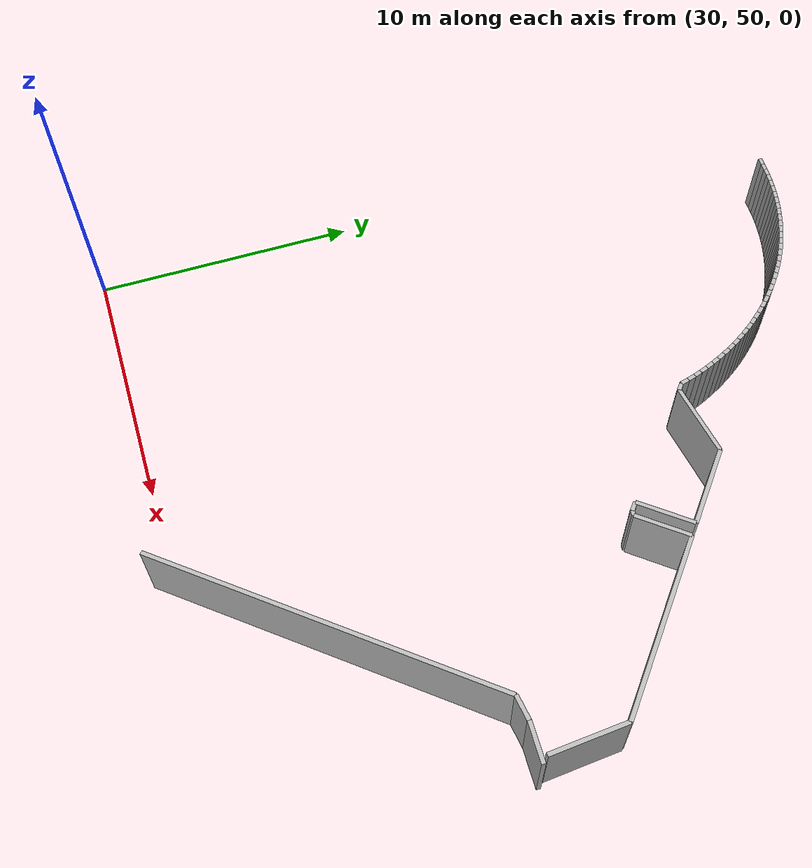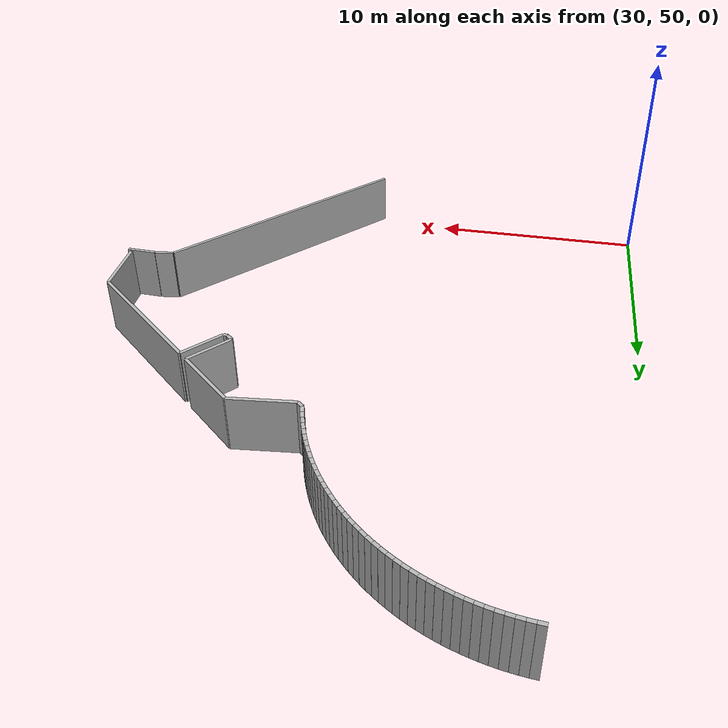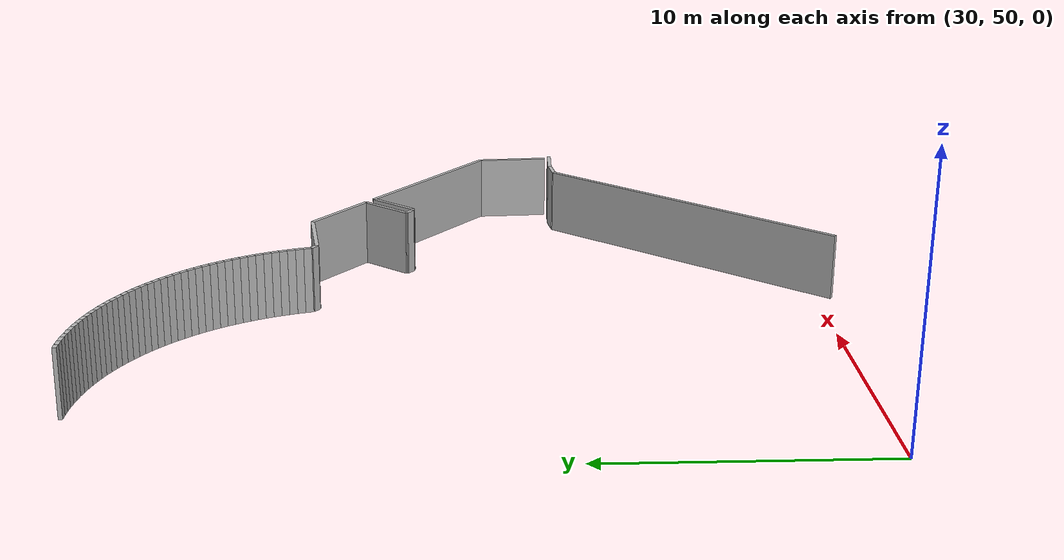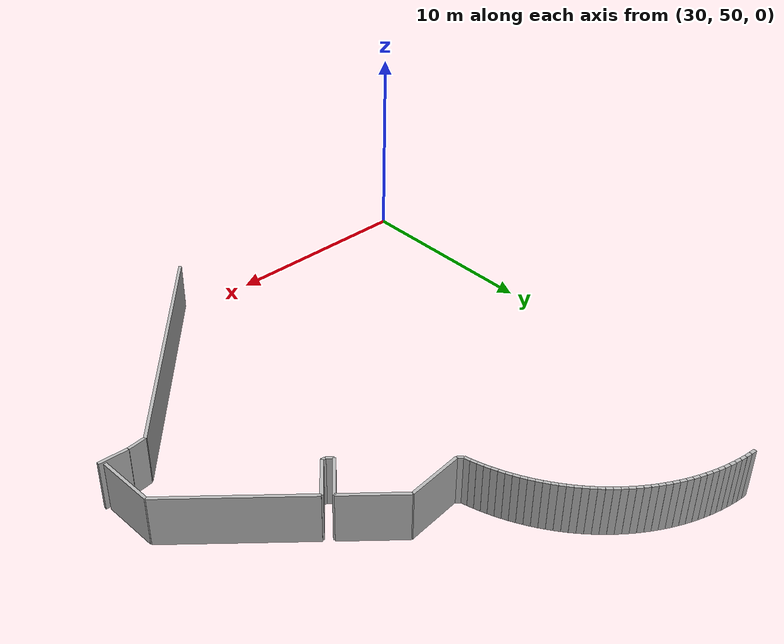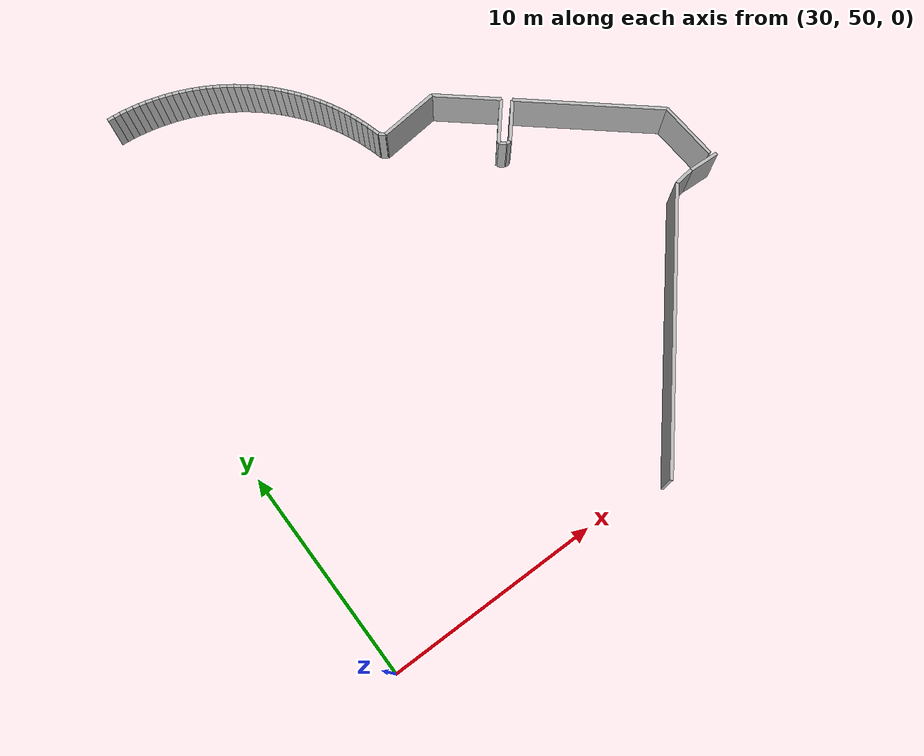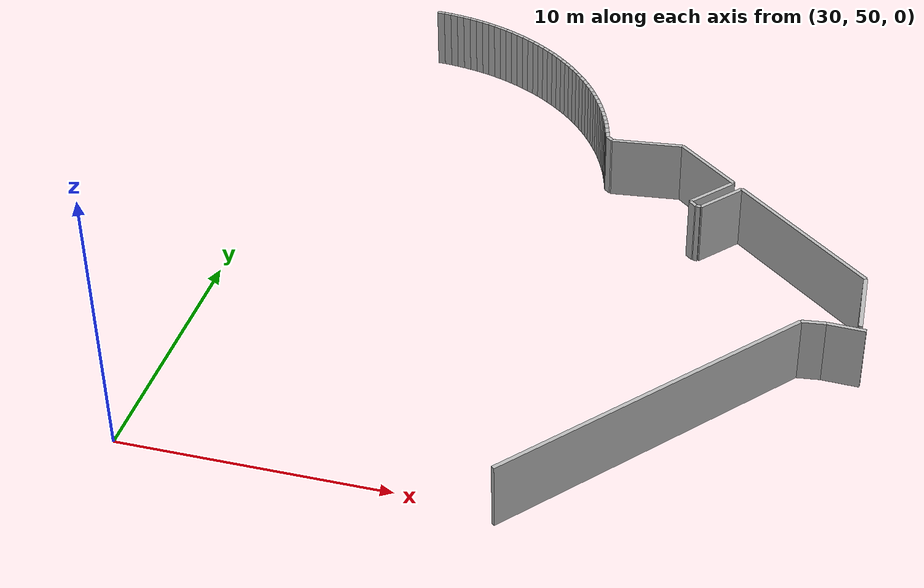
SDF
<sdf version="1.6">
 <model name="sps_2005">
  <static>1</static>
  <allow_auto_disable>0</allow_auto_disable>
  <link name="Wall1125">
   <collision name="collision"><geometry><box><size>2.75885 0.15 2.5</size></box></geometry></collision>
   <visual name="visual">
    <geometry><box><size>2.75885 0.15 2.5</size></box></geometry>
    <transparency>0.0</transparency>
   </visual>
   <pose>53.9205 60.9409 1.25 0 0 -1.51393</pose>
  </link>
  <link name="Wall1127">
   <collision name="collision"><geometry><box><size>1.3896 0.15 2.5</size></box></geometry></collision>
   <visual name="visual">
    <geometry><box><size>1.3896 0.15 2.5</size></box></geometry>
    <transparency>0.0</transparency>
   </visual>
   <pose>53.5327 59.4013 1.25 0 -0 3.09638</pose>
  </link>
  <link name="Wall1128">
   <collision name="collision"><geometry><box><size>0.884401 0.15 2.5</size></box></geometry></collision>
   <visual name="visual">
    <geometry><box><size>0.884401 0.15 2.5</size></box></geometry>
    <transparency>0.0</transparency>
   </visual>
   <pose>52.3997 59.3788 1.25 0 0 -3.01941</pose>
  </link>
  <link name="Wall1129">
   <collision name="collision"><geometry><box><size>13.0009 0.15 2.5</size></box></geometry></collision>
   <visual name="visual">
    <geometry><box><size>13.0009 0.15 2.5</size></box></geometry>
    <transparency>0.0</transparency>
   </visual>
   <pose>47.7584 54.3655 1.25 0 0 -2.27375</pose>
  </link>
  <link name="Wall1242">
   <collision name="collision"><geometry><box><size>0.304753 0.15 2.5</size></box></geometry></collision>
   <visual name="visual">
    <geometry><box><size>0.304753 0.15 2.5</size></box></geometry>
    <transparency>0.0</transparency>
   </visual>
   <pose>33.9059 76.5675 1.25 0 0 -0.0695524</pose>
  </link>
  <link name="Wall1243">
   <collision name="collision"><geometry><box><size>0.304663 0.15 2.5</size></box></geometry></collision>
   <visual name="visual">
    <geometry><box><size>0.304663 0.15 2.5</size></box></geometry>
    <transparency>0.0</transparency>
   </visual>
   <pose>34.2095 76.5418 1.25 0 0 -0.0993298</pose>
  </link>
  <link name="Wall1244">
   <collision name="collision"><geometry><box><size>0.30477 0.15 2.5</size></box></geometry></collision>
   <visual name="visual">
    <geometry><box><size>0.30477 0.15 2.5</size></box></geometry>
    <transparency>0.0</transparency>
   </visual>
   <pose>34.5121 76.5069 1.25 0 0 -0.130341</pose>
  </link>
  <link name="Wall1245">
   <collision name="collision"><geometry><box><size>0.304769 0.15 2.5</size></box></geometry></collision>
   <visual name="visual">
    <geometry><box><size>0.304769 0.15 2.5</size></box></geometry>
    <transparency>0.0</transparency>
   </visual>
   <pose>34.8137 76.4627 1.25 0 0 -0.160704</pose>
  </link>
  <link name="Wall1246">
   <collision name="collision"><geometry><box><size>0.304906 0.15 2.5</size></box></geometry></collision>
   <visual name="visual">
    <geometry><box><size>0.304906 0.15 2.5</size></box></geometry>
    <transparency>0.0</transparency>
   </visual>
   <pose>35.1138 76.4094 1.25 0 0 -0.190722</pose>
  </link>
  <link name="Wall1247">
   <collision name="collision"><geometry><box><size>0.304643 0.15 2.5</size></box></geometry></collision>
   <visual name="visual">
    <geometry><box><size>0.304643 0.15 2.5</size></box></geometry>
    <transparency>0.0</transparency>
   </visual>
   <pose>35.412 76.347 1.25 0 0 -0.221798</pose>
  </link>
  <link name="Wall1248">
   <collision name="collision"><geometry><box><size>0.30485 0.15 2.5</size></box></geometry></collision>
   <visual name="visual">
    <geometry><box><size>0.30485 0.15 2.5</size></box></geometry>
    <transparency>0.0</transparency>
   </visual>
   <pose>35.7082 76.2755 1.25 0 0 -0.251923</pose>
  </link>
  <link name="Wall1249">
   <collision name="collision"><geometry><box><size>0.304881 0.15 2.5</size></box></geometry></collision>
   <visual name="visual">
    <geometry><box><size>0.304881 0.15 2.5</size></box></geometry>
    <transparency>0.0</transparency>
   </visual>
   <pose>36.0023 76.195 1.25 0 0 -0.282617</pose>
  </link>
  <link name="Wall1250">
   <collision name="collision"><geometry><box><size>0.304833 0.15 2.5</size></box></geometry></collision>
   <visual name="visual">
    <geometry><box><size>0.304833 0.15 2.5</size></box></geometry>
    <transparency>0.0</transparency>
   </visual>
   <pose>36.2937 76.1056 1.25 0 0 -0.312823</pose>
  </link>
  <link name="Wall1251">
   <collision name="collision"><geometry><box><size>0.304838 0.15 2.5</size></box></geometry></collision>
   <visual name="visual">
    <geometry><box><size>0.304838 0.15 2.5</size></box></geometry>
    <transparency>0.0</transparency>
   </visual>
   <pose>36.5822 76.0073 1.25 0 0 -0.343913</pose>
  </link>
  <link name="Wall1252">
   <collision name="collision"><geometry><box><size>0.304662 0.15 2.5</size></box></geometry></collision>
   <visual name="visual">
    <geometry><box><size>0.304662 0.15 2.5</size></box></geometry>
    <transparency>0.0</transparency>
   </visual>
   <pose>36.8675 75.9002 1.25 0 0 -0.374294</pose>
  </link>
  <link name="Wall1253">
   <collision name="collision"><geometry><box><size>0.304824 0.15 2.5</size></box></geometry></collision>
   <visual name="visual">
    <geometry><box><size>0.304824 0.15 2.5</size></box></geometry>
    <transparency>0.0</transparency>
   </visual>
   <pose>37.1493 75.7845 1.25 0 0 -0.404603</pose>
  </link>
  <link name="Wall1254">
   <collision name="collision"><geometry><box><size>0.304801 0.15 2.5</size></box></geometry></collision>
   <visual name="visual">
    <geometry><box><size>0.304801 0.15 2.5</size></box></geometry>
    <transparency>0.0</transparency>
   </visual>
   <pose>37.4277 75.6603 1.25 0 0 -0.434897</pose>
  </link>
  <link name="Wall1255">
   <collision name="collision"><geometry><box><size>0.304812 0.15 2.5</size></box></geometry></collision>
   <visual name="visual">
    <geometry><box><size>0.304812 0.15 2.5</size></box></geometry>
    <transparency>0.0</transparency>
   </visual>
   <pose>37.7021 75.5277 1.25 0 0 -0.465349</pose>
  </link>
  <link name="Wall1256">
   <collision name="collision"><geometry><box><size>0.304886 0.15 2.5</size></box></geometry></collision>
   <visual name="visual">
    <geometry><box><size>0.304886 0.15 2.5</size></box></geometry>
    <transparency>0.0</transparency>
   </visual>
   <pose>37.9724 75.3868 1.25 0 0 -0.495704</pose>
  </link>
  <link name="Wall1257">
   <collision name="collision"><geometry><box><size>0.304683 0.15 2.5</size></box></geometry></collision>
   <visual name="visual">
    <geometry><box><size>0.304683 0.15 2.5</size></box></geometry>
    <transparency>0.0</transparency>
   </visual>
   <pose>38.2382 75.2377 1.25 0 0 -0.526849</pose>
  </link>
  <link name="Wall1258">
   <collision name="collision"><geometry><box><size>0.304841 0.15 2.5</size></box></geometry></collision>
   <visual name="visual">
    <geometry><box><size>0.304841 0.15 2.5</size></box></geometry>
    <transparency>0.0</transparency>
   </visual>
   <pose>38.4993 75.0806 1.25 0 0 -0.556456</pose>
  </link>
  <link name="Wall1259">
   <collision name="collision"><geometry><box><size>0.304909 0.15 2.5</size></box></geometry></collision>
   <visual name="visual">
    <geometry><box><size>0.304909 0.15 2.5</size></box></geometry>
    <transparency>0.0</transparency>
   </visual>
   <pose>38.7556 74.9156 1.25 0 0 -0.587503</pose>
  </link>
  <link name="Wall1260">
   <collision name="collision"><geometry><box><size>0.304775 0.15 2.5</size></box></geometry></collision>
   <visual name="visual">
    <geometry><box><size>0.304775 0.15 2.5</size></box></geometry>
    <transparency>0.0</transparency>
   </visual>
   <pose>39.0067 74.7428 1.25 0 0 -0.617945</pose>
  </link>
  <link name="Wall1261">
   <collision name="collision"><geometry><box><size>0.304801 0.15 2.5</size></box></geometry></collision>
   <visual name="visual">
    <geometry><box><size>0.304801 0.15 2.5</size></box></geometry>
    <transparency>0.0</transparency>
   </visual>
   <pose>39.2524 74.5625 1.25 0 0 -0.648187</pose>
  </link>
  <link name="Wall1262">
   <collision name="collision"><geometry><box><size>0.304782 0.15 2.5</size></box></geometry></collision>
   <visual name="visual">
    <geometry><box><size>0.304782 0.15 2.5</size></box></geometry>
    <transparency>0.0</transparency>
   </visual>
   <pose>39.4925 74.3748 1.25 0 0 -0.678994</pose>
  </link>
  <link name="Wall1263">
   <collision name="collision"><geometry><box><size>0.304635 0.15 2.5</size></box></geometry></collision>
   <visual name="visual">
    <geometry><box><size>0.304635 0.15 2.5</size></box></geometry>
    <transparency>0.0</transparency>
   </visual>
   <pose>39.7266 74.1799 1.25 0 0 -0.709104</pose>
  </link>
  <link name="Wall1264">
   <collision name="collision"><geometry><box><size>0.30467 0.15 2.5</size></box></geometry></collision>
   <visual name="visual">
    <geometry><box><size>0.30467 0.15 2.5</size></box></geometry>
    <transparency>0.0</transparency>
   </visual>
   <pose>39.9548 73.978 1.25 0 0 -0.739769</pose>
  </link>
  <link name="Wall1265">
   <collision name="collision"><geometry><box><size>0.304776 0.15 2.5</size></box></geometry></collision>
   <visual name="visual">
    <geometry><box><size>0.304776 0.15 2.5</size></box></geometry>
    <transparency>0.0</transparency>
   </visual>
   <pose>40.1767 73.7692 1.25 0 0 -0.770246</pose>
  </link>
  <link name="Wall1266">
   <collision name="collision"><geometry><box><size>0.30482 0.15 2.5</size></box></geometry></collision>
   <visual name="visual">
    <geometry><box><size>0.30482 0.15 2.5</size></box></geometry>
    <transparency>0.0</transparency>
   </visual>
   <pose>40.3921 73.5537 1.25 0 0 -0.80069</pose>
  </link>
  <link name="Wall1267">
   <collision name="collision"><geometry><box><size>0.304805 0.15 2.5</size></box></geometry></collision>
   <visual name="visual">
    <geometry><box><size>0.304805 0.15 2.5</size></box></geometry>
    <transparency>0.0</transparency>
   </visual>
   <pose>40.6009 73.3317 1.25 0 0 -0.831432</pose>
  </link>
  <link name="Wall1268">
   <collision name="collision"><geometry><box><size>0.304814 0.15 2.5</size></box></geometry></collision>
   <visual name="visual">
    <geometry><box><size>0.304814 0.15 2.5</size></box></geometry>
    <transparency>0.0</transparency>
   </visual>
   <pose>40.8028 73.1034 1.25 0 0 -0.861931</pose>
  </link>
  <link name="Wall1269">
   <collision name="collision"><geometry><box><size>0.304782 0.15 2.5</size></box></geometry></collision>
   <visual name="visual">
    <geometry><box><size>0.304782 0.15 2.5</size></box></geometry>
    <transparency>0.0</transparency>
   </visual>
   <pose>40.9978 72.8691 1.25 0 0 -0.891802</pose>
  </link>
  <link name="Wall1270">
   <collision name="collision"><geometry><box><size>0.304764 0.15 2.5</size></box></geometry></collision>
   <visual name="visual">
    <geometry><box><size>0.304764 0.15 2.5</size></box></geometry>
    <transparency>0.0</transparency>
   </visual>
   <pose>41.1854 72.629 1.25 0 0 -0.922769</pose>
  </link>
  <link name="Wall1271">
   <collision name="collision"><geometry><box><size>0.304916 0.15 2.5</size></box></geometry></collision>
   <visual name="visual">
    <geometry><box><size>0.304916 0.15 2.5</size></box></geometry>
    <transparency>0.0</transparency>
   </visual>
   <pose>41.3658 72.3833 1.25 0 0 -0.952199</pose>
  </link>
  <link name="Wall1272">
   <collision name="collision"><geometry><box><size>0.304757 0.15 2.5</size></box></geometry></collision>
   <visual name="visual">
    <geometry><box><size>0.304757 0.15 2.5</size></box></geometry>
    <transparency>0.0</transparency>
   </visual>
   <pose>41.5386 72.1322 1.25 0 0 -0.984405</pose>
  </link>
  <link name="Wall1273">
   <collision name="collision"><geometry><box><size>0.304757 0.15 2.5</size></box></geometry></collision>
   <visual name="visual">
    <geometry><box><size>0.304757 0.15 2.5</size></box></geometry>
    <transparency>0.0</transparency>
   </visual>
   <pose>41.7034 71.8759 1.25 0 0 -1.0144</pose>
  </link>
  <link name="Wall1274">
   <collision name="collision"><geometry><box><size>0.304894 0.15 2.5</size></box></geometry></collision>
   <visual name="visual">
    <geometry><box><size>0.304894 0.15 2.5</size></box></geometry>
    <transparency>0.0</transparency>
   </visual>
   <pose>41.8604 71.6147 1.25 0 0 -1.04435</pose>
  </link>
  <link name="Wall1275">
   <collision name="collision"><geometry><box><size>0.304585 0.15 2.5</size></box></geometry></collision>
   <visual name="visual">
    <geometry><box><size>0.304585 0.15 2.5</size></box></geometry>
    <transparency>0.0</transparency>
   </visual>
   <pose>42.0095 71.3489 1.25 0 0 -1.07524</pose>
  </link>
  <link name="Wall1276">
   <collision name="collision"><geometry><box><size>0.304894 0.15 2.5</size></box></geometry></collision>
   <visual name="visual">
    <geometry><box><size>0.304894 0.15 2.5</size></box></geometry>
    <transparency>0.0</transparency>
   </visual>
   <pose>42.1504 71.0787 1.25 0 0 -1.10491</pose>
  </link>
  <link name="Wall1277">
   <collision name="collision"><geometry><box><size>0.304801 0.15 2.5</size></box></geometry></collision>
   <visual name="visual">
    <geometry><box><size>0.304801 0.15 2.5</size></box></geometry>
    <transparency>0.0</transparency>
   </visual>
   <pose>42.283 70.8043 1.25 0 0 -1.1359</pose>
  </link>
  <link name="Wall1278">
   <collision name="collision"><geometry><box><size>0.304824 0.15 2.5</size></box></geometry></collision>
   <visual name="visual">
    <geometry><box><size>0.304824 0.15 2.5</size></box></geometry>
    <transparency>0.0</transparency>
   </visual>
   <pose>42.4072 70.526 1.25 0 0 -1.16619</pose>
  </link>
  <link name="Wall1279">
   <collision name="collision"><geometry><box><size>0.304823 0.15 2.5</size></box></geometry></collision>
   <visual name="visual">
    <geometry><box><size>0.304823 0.15 2.5</size></box></geometry>
    <transparency>0.0</transparency>
   </visual>
   <pose>42.5228 70.244 1.25 0 0 -1.19735</pose>
  </link>
  <link name="Wall1280">
   <collision name="collision"><geometry><box><size>0.304838 0.15 2.5</size></box></geometry></collision>
   <visual name="visual">
    <geometry><box><size>0.304838 0.15 2.5</size></box></geometry>
    <transparency>0.0</transparency>
   </visual>
   <pose>42.6298 69.9586 1.25 0 0 -1.22688</pose>
  </link>
  <link name="Wall1281">
   <collision name="collision"><geometry><box><size>0.304719 0.15 2.5</size></box></geometry></collision>
   <visual name="visual">
    <geometry><box><size>0.304719 0.15 2.5</size></box></geometry>
    <transparency>0.0</transparency>
   </visual>
   <pose>42.728 69.6701 1.25 0 0 -1.25848</pose>
  </link>
  <link name="Wall1282">
   <collision name="collision"><geometry><box><size>0.304705 0.15 2.5</size></box></geometry></collision>
   <visual name="visual">
    <geometry><box><size>0.304705 0.15 2.5</size></box></geometry>
    <transparency>0.0</transparency>
   </visual>
   <pose>42.8174 69.3788 1.25 0 0 -1.28801</pose>
  </link>
  <link name="Wall1283">
   <collision name="collision"><geometry><box><size>0.30485 0.15 2.5</size></box></geometry></collision>
   <visual name="visual">
    <geometry><box><size>0.30485 0.15 2.5</size></box></geometry>
    <transparency>0.0</transparency>
   </visual>
   <pose>42.8979 69.0849 1.25 0 0 -1.31887</pose>
  </link>
  <link name="Wall1284">
   <collision name="collision"><geometry><box><size>0.299155 0.15 2.5</size></box></geometry></collision>
   <visual name="visual">
    <geometry><box><size>0.299155 0.15 2.5</size></box></geometry>
    <transparency>0.0</transparency>
   </visual>
   <pose>43.0502 68.8408 1.25 0 0 -0.701191</pose>
  </link>
  <link name="Wall1285">
   <collision name="collision"><geometry><box><size>2.75899 0.15 2.5</size></box></geometry></collision>
   <visual name="visual">
    <geometry><box><size>2.75899 0.15 2.5</size></box></geometry>
    <transparency>0.0</transparency>
   </visual>
   <pose>44.5359 68.8927 1.25 0 -0 0.107789</pose>
  </link>
  <link name="Wall1286">
   <collision name="collision"><geometry><box><size>3.06995 0.15 2.5</size></box></geometry></collision>
   <visual name="visual">
    <geometry><box><size>3.06995 0.15 2.5</size></box></geometry>
    <transparency>0.0</transparency>
   </visual>
   <pose>47.0786 68.0489 1.25 0 0 -0.702838</pose>
  </link>
  <link name="Wall1287">
   <collision name="collision"><geometry><box><size>2.10097 0.15 2.5</size></box></geometry></collision>
   <visual name="visual">
    <geometry><box><size>2.10097 0.15 2.5</size></box></geometry>
    <transparency>0.0</transparency>
   </visual>
   <pose>47.5705 66.2554 1.25 0 0 -2.27397</pose>
  </link>
  <link name="Wall1288">
   <collision name="collision"><geometry><box><size>0.350533 0.15 2.5</size></box></geometry></collision>
   <visual name="visual">
    <geometry><box><size>0.350533 0.15 2.5</size></box></geometry>
    <transparency>0.0</transparency>
   </visual>
   <pose>47.025 65.3409 1.25 0 0 -0.702318</pose>
  </link>
  <link name="Wall1289">
   <collision name="collision"><geometry><box><size>0.179789 0.15 2.5</size></box></geometry></collision>
   <visual name="visual">
    <geometry><box><size>0.179789 0.15 2.5</size></box></geometry>
    <transparency>0.0</transparency>
   </visual>
   <pose>47.2482 65.2176 1.25 0 0 -0.112607</pose>
  </link>
  <link name="Wall1290">
   <collision name="collision"><geometry><box><size>2.00049 0.15 2.5</size></box></geometry></collision>
   <visual name="visual">
    <geometry><box><size>2.00049 0.15 2.5</size></box></geometry>
    <transparency>0.0</transparency>
   </visual>
   <pose>47.9844 65.9704 1.25 0 -0 0.867515</pose>
  </link>
  <link name="Wall1291">
   <collision name="collision"><geometry><box><size>6.82985 0.15 2.5</size></box></geometry></collision>
   <visual name="visual">
    <geometry><box><size>6.82985 0.15 2.5</size></box></geometry>
    <transparency>0.0</transparency>
   </visual>
   <pose>51.2367 64.5257 1.25 0 0 -0.702935</pose>
  </link>
 </model>
</sdf>
